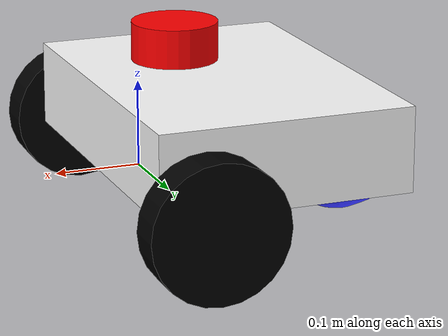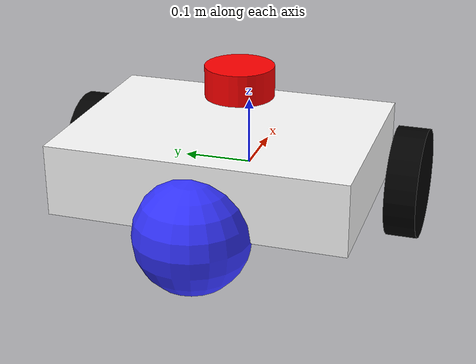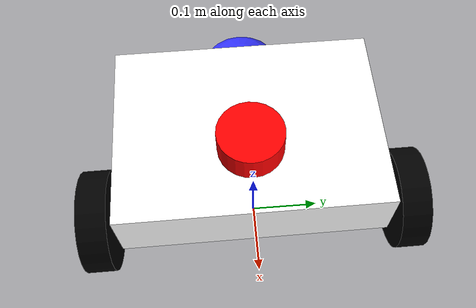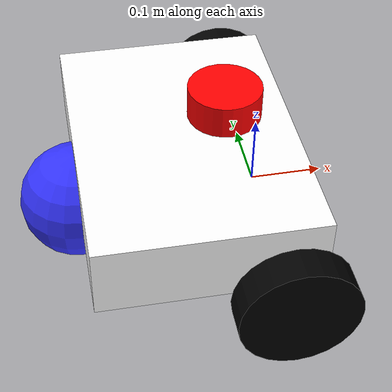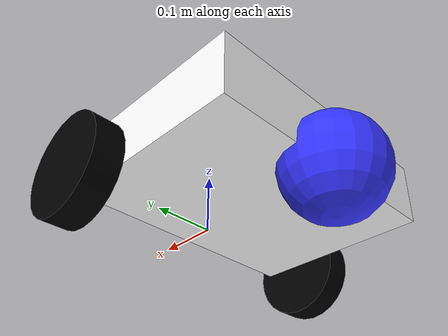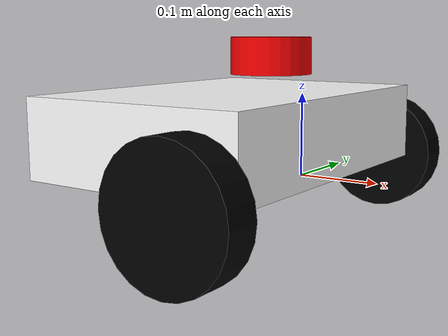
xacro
<?xml version="1.0"?>
<!-- Basic differential drive mobile base -->
<robot xmlns:xacro="http://www.ros.org/wiki/xacro" name="diffdrive_robot">
  <xacro:arg name="prefix" default="" />
  <xacro:arg name="use_mock_hardware" default="false" />

  <xacro:include filename="$(find botwheel)/description/botwheel_description.urdf.xacro" />

  <!-- Import Rviz colors -->

  <!-- Import diffbot ros2_control description -->
  <xacro:include filename="$(find botwheel)/description/botwheel.ros2_control.xacro" />

  <xacro:botwheel prefix="$(arg prefix)" />

  <xacro:botwheel_ros2_control
    name="Botwheel" prefix="$(arg prefix)" use_mock_hardware="$(arg use_mock_hardware)"/>

</robot>

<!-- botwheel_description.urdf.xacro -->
<robot xmlns:xacro="http://www.ros.org/wiki/xacro">

    <xacro:macro name="botwheel" params="prefix">

    <xacro:include filename="inertial_macros.xacro"/>

    <!-- Constants for robot dimensions -->
    <xacro:property name="PI" value="3.1415926535897931"/>
    <xacro:property name="base_mass" value="0.3" /> <!-- arbitrary value for base mass -->
    <xacro:property name="base_width" value="0.1" />
    <xacro:property name="base_length" value="0.1" />
    <xacro:property name="base_height" value="0.05" />
    <xacro:property name="wheel_mass" value="0.3" /> <!-- arbitrary value for wheel mass -->
    <xacro:property name="wheel_len" value="0.020" />
    <xacro:property name="wheel_radius" value="0.015" />
    <xacro:property name="caster_wheel_mass" value="0.1" /> <!-- arbitrary value for caster wheel mass -->
    <xacro:property name="caster_wheel_radius" value="0.015" />
    <xacro:property name="z_offset" value="-${base_height/2}" /> <!-- Space btw top of beam and the each joint -->

    <material name="white">
        <color rgba="1 1 1 1" />
    </material>

    <material name="orange">
        <color rgba="1 0.3 0.1 1" />
    </material>

    <material name="blue">
        <color rgba="0.2 0.2 1 1" />
    </material>

    <material name="black">
        <color rgba="0 0 0 1" />
    </material>

    <material name="red">
        <color rgba="1 0 0 1" />
    </material>

    <!-- Base Link-->

    <link name="botwheel">
    </link>

    <!-- BASE_FOOTPRINT LINK -->

    <joint name="base_footprint_joint" type="fixed">
        <parent link="botwheel"/>
        <child link="base_footprint"/>
        <origin xyz="0 0 0" rpy="0 0 0"/>
    </joint>

    <link name="base_footprint">
    </link>

    <!-- Chassis Link -->

    <joint name="chassis_joint" type="fixed">
        <parent link="botwheel"/>
        <child link="chassis"/>
        <origin xyz= "0.05 0 0"/>
    </joint>

    <link name="chassis">
        <visual>
            <origin xyz="-0.15 0 0.05 "/>
            <geometry>
                <box size="0.3 0.415 0.1"/>
            </geometry>
            <material name="white"/>
        </visual>
        <collision>
            <origin xyz="-0.15 0 0.05 "/>
            <geometry>
                <box size="0.3 0.415 0.1"/>
            </geometry>
        </collision>
        <xacro:inertial_box mass="0.7" x="0.3" y="0.415" z="0.15">
            <origin xyz="-0.15 0 0.05 " rpy="0 0 0"/>
        </xacro:inertial_box>
    </link>

    <!-- Left Wheel Link -->

    <joint name="left_wheel_joint" type="continuous">
        <parent link="chassis"/>
        <child link="left_wheel"/>
        <origin xyz= "-0.05 0.2425 0" rpy="-${pi/2} 0 0"/>
        <axis xyz="0 0 1"/>
    </joint>

    <link name="left_wheel">
        <visual>
            <geometry>
                <cylinder radius="0.08" length="0.045"/>
            </geometry>
            <material name="black"/>
            <origin xyz="0 0 0"/>
        </visual>
        <collision>
            <geometry>
                <cylinder radius="0.08" length="0.045"/>
            </geometry>
        </collision>
        <xacro:inertial_cylinder mass="0.15" length="0.04" radius="0.05">
            <origin xyz="0 0 0" rpy="0 0 0"/>
        </xacro:inertial_cylinder>
    </link>

     <!-- Right Wheel Link -->
    <joint name="right_wheel_joint" type="continuous">
        <parent link="chassis"/>
        <child link="right_wheel"/>
        <origin xyz= "-0.05 -0.2425 0" rpy="${pi/2} 0 0"/>
        <axis xyz="0 0 -1"/>
    </joint>

    <link name="right_wheel">
        <visual>
            <geometry>
                <cylinder radius="0.08" length="0.045"/>
            </geometry>
            <material name="black"/>
            <origin xyz="0 0 0"/>
        </visual>
        <collision>
            <geometry>
                <cylinder radius="0.08" length="0.045"/>
            </geometry>
        </collision>
        <xacro:inertial_cylinder mass="0.15" length="0.04" radius="0.05">
            <origin xyz="0 0 0" rpy="0 0 0"/>
        </xacro:inertial_cylinder>
    </link>

    <!-- Caster Wheel -->

    <joint name="caster_wheel_joint" type="fixed">
        <parent link="chassis"/>
        <child link="caster_wheel"/>
        <origin xyz="-0.3 0 0"/>
    </joint>

    <link name="caster_wheel">
        <visual>
            <geometry>
                <sphere radius="0.08"/>
            </geometry>
            <material name="blue"/>
        </visual>
        <collision>
            <geometry>
                <sphere radius="0.08"/>
            </geometry>
        </collision>
        <xacro:inertial_sphere mass="0.1" radius="0.05">
            <origin xyz="0 0 0" rpy="0 0 0"/>
        </xacro:inertial_sphere>

    </link>

    <gazebo reference="caster_wheel">
        <mu1 value="0.0001"/>
        <mu2 value="0.0001"/>
    </gazebo>

    <joint name="laser_joint" type="fixed">
        <parent link="chassis"/>
        <child link="laser"/>
        <origin xyz="-0.095 0 0.145" rpy="0 0 0"/>
    </joint>

    <link name="laser">
        <visual>
            <geometry>
                <cylinder radius="0.05" length="0.045"/>
            </geometry>
            <material name="red"/>
        </visual>
        <collision>
            <geometry>
                <cylinder radius="0.08" length="0.045"/>
            </geometry>
        </collision>
        <xacro:inertial_cylinder mass="0.15" length="0.04" radius="0.05">
            <origin xyz="0 0 0" rpy="0 0 0"/>
        </xacro:inertial_cylinder>
    </link>

    </xacro:macro>

</robot>
